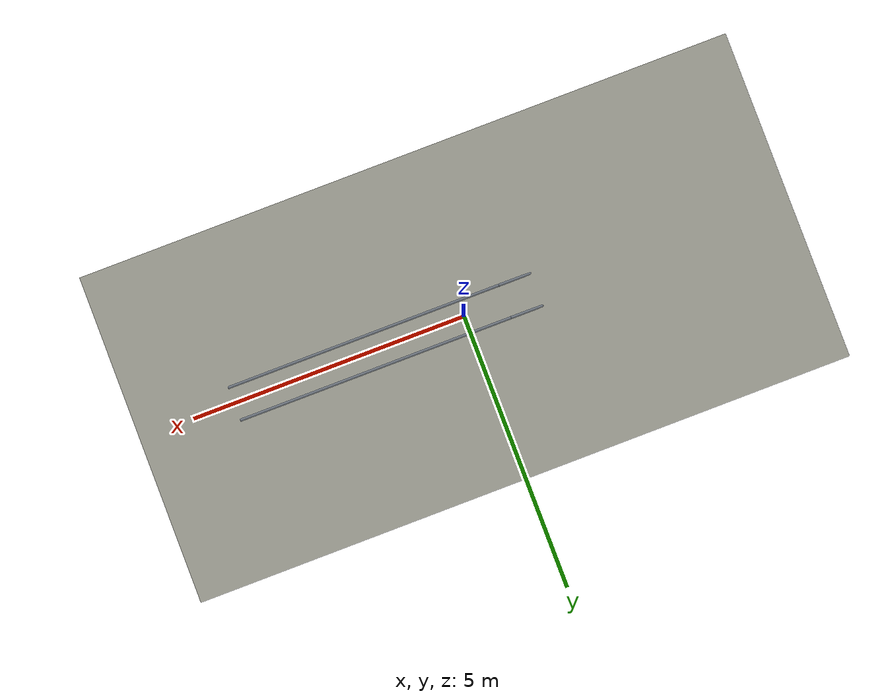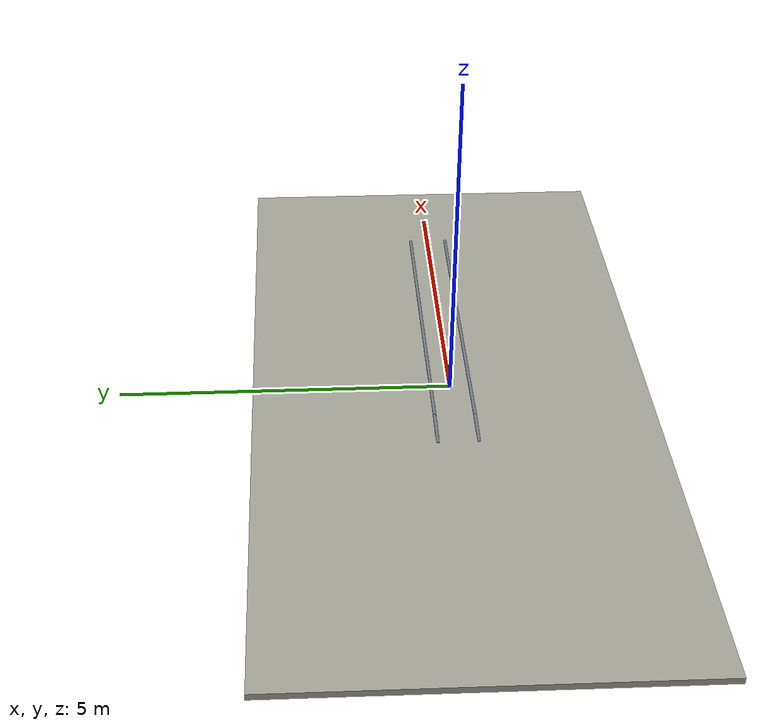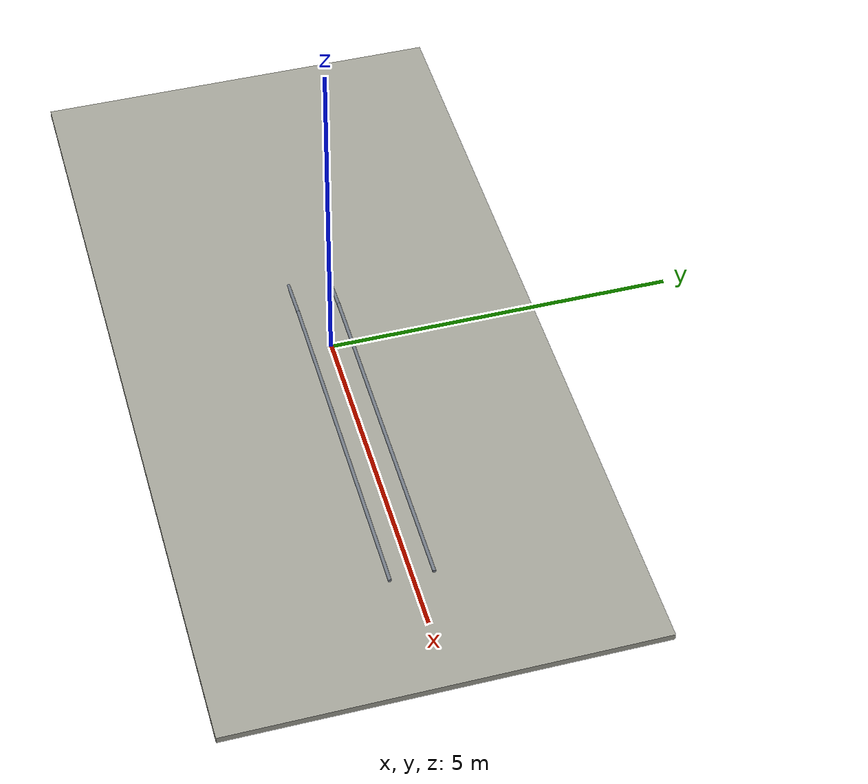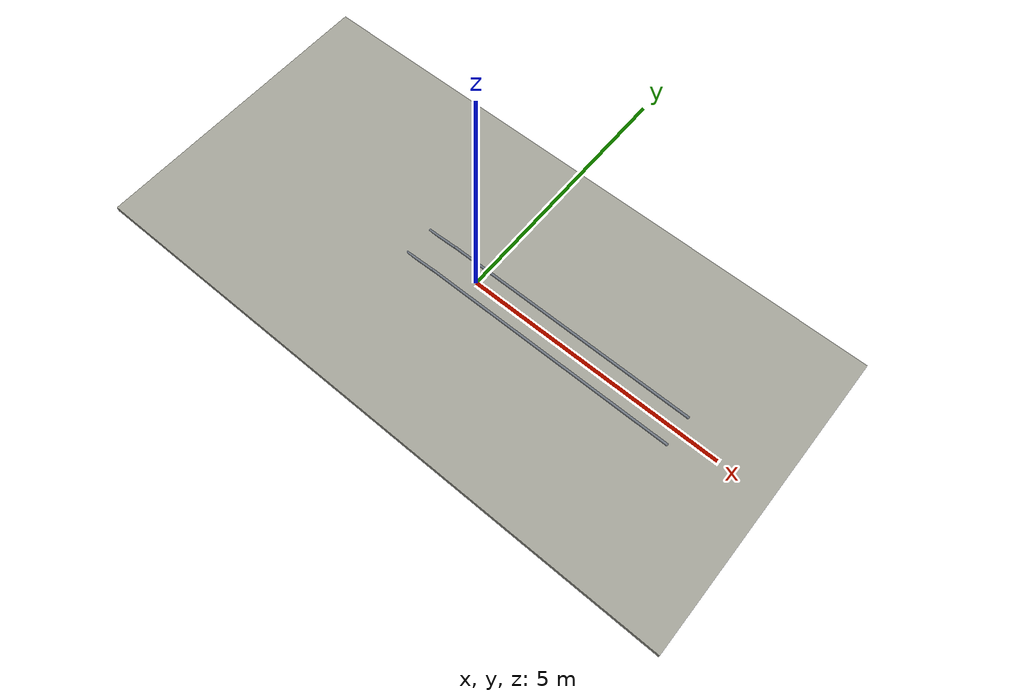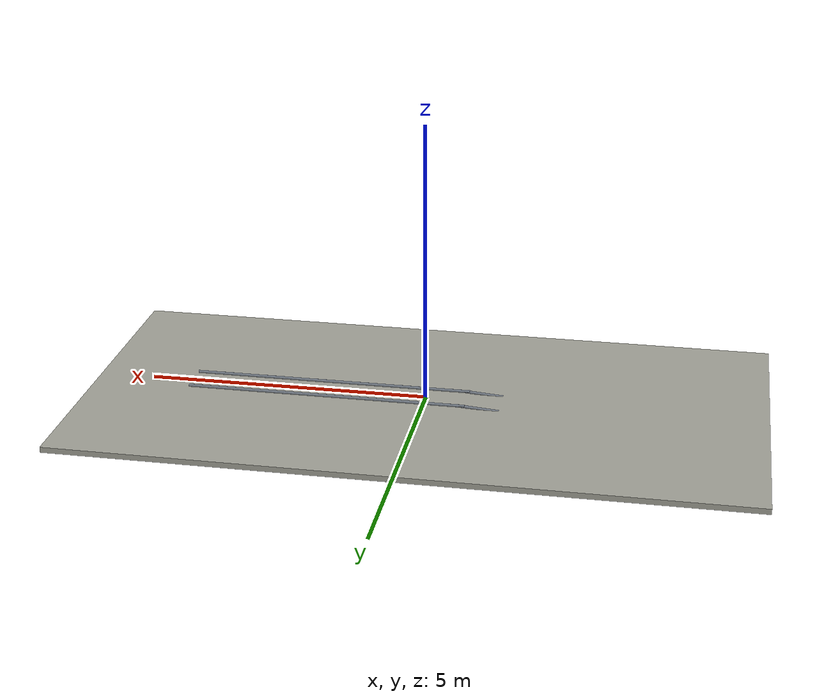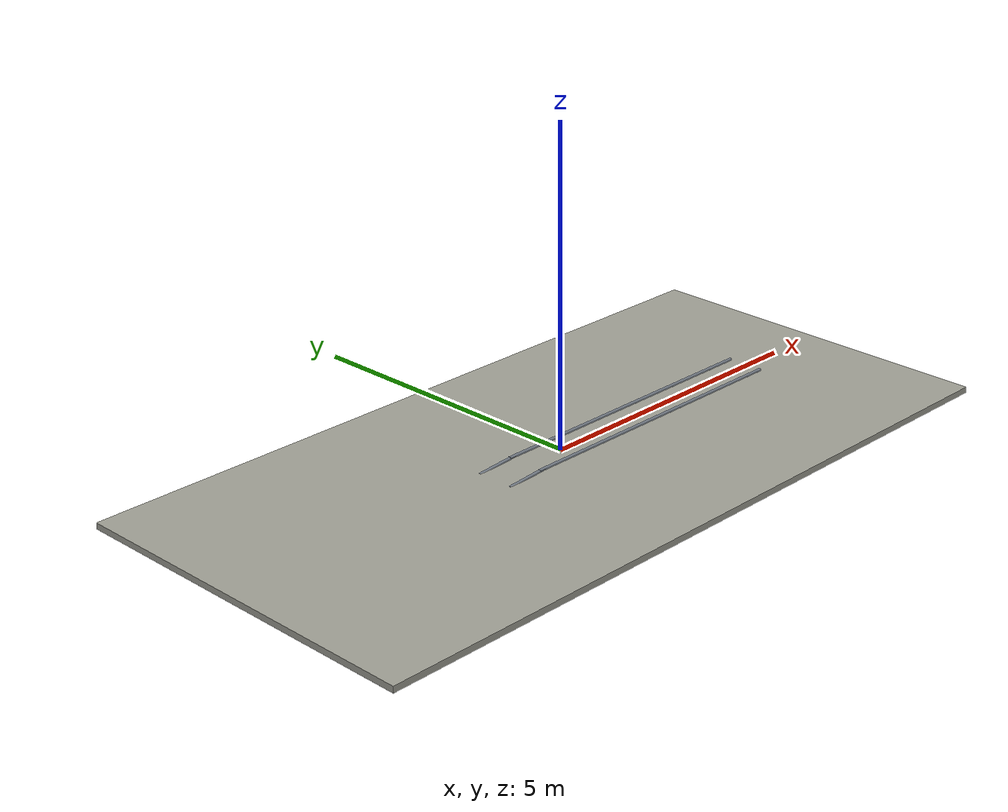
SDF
<?xml version="1.0"?>
<sdf version="1.6">
  <world name="rail_entry">
    <gravity>0 0 -9.80665</gravity>
    <physics name="ode_physics" default="1" type="ode">
      <max_step_size>0.001</max_step_size>
      <real_time_factor>1.0</real_time_factor>
      <real_time_update_rate>1000</real_time_update_rate>
      <ode>
        <solver><type>quick</type><iters>100</iters><sor>1.3</sor></solver>
        <constraints><cfm>0.0</cfm><erp>0.2</erp><contact_max_correcting_vel>0.08</contact_max_correcting_vel><contact_surface_layer>0.0005</contact_surface_layer></constraints>
      </ode>
    </physics>

    <plugin name="gazebo_ros_state" filename="libgazebo_ros_state.so">
      <ros><namespace>/gazebo</namespace></ros>
      <update_rate>50.0</update_rate>
    </plugin>

    <scene>
      <ambient>0.65 0.65 0.65 1</ambient>
      <background>0.82 0.88 0.94 1</background>
      <shadows>true</shadows>
    </scene>

    <model name="concrete_floor">
      <static>true</static>
      <link name="floor_link">
        <collision name="floor_collision">
          <geometry><box><size>12 6 0.10</size></box></geometry>
          <pose>0 0 -0.05 0 0 0</pose>
          <surface><friction><ode><mu>1.2</mu><mu2>1.2</mu2></ode></friction></surface>
        </collision>
        <visual name="floor_visual">
          <geometry><box><size>12 6 0.10</size></box></geometry>
          <pose>0 0 -0.05 0 0 0</pose>
          <material><ambient>0.55 0.55 0.52 1</ambient><diffuse>0.62 0.62 0.58 1</diffuse></material>
        </visual>
      </link>
    </model>

    <model name="left_entry_ramp">
      <static>true</static>
      <pose>-1.0 0.30 0.010 0 1.4994888620 0</pose>
      <link name="rail_link">
        <collision name="rail_collision">
          <geometry><cylinder><radius>0.025</radius><length>0.7017834424</length></cylinder></geometry>
          <surface><friction><ode><mu>0.60</mu><mu2>20.0</mu2><fdir1>0 0 1</fdir1></ode></friction></surface>
        </collision>
        <visual name="rail_visual">
          <geometry><cylinder><radius>0.025</radius><length>0.7017834424</length></cylinder></geometry>
          <material><ambient>0.28 0.30 0.32 1</ambient><diffuse>0.45 0.48 0.52 1</diffuse></material>
        </visual>
      </link>
    </model>

    <model name="right_entry_ramp">
      <static>true</static>
      <pose>-1.0 -0.30 0.010 0 1.4994888620 0</pose>
      <link name="rail_link">
        <collision name="rail_collision">
          <geometry><cylinder><radius>0.025</radius><length>0.7017834424</length></cylinder></geometry>
          <surface><friction><ode><mu>0.60</mu><mu2>20.0</mu2><fdir1>0 0 1</fdir1></ode></friction></surface>
        </collision>
        <visual name="rail_visual">
          <geometry><cylinder><radius>0.025</radius><length>0.7017834424</length></cylinder></geometry>
          <material><ambient>0.28 0.30 0.32 1</ambient><diffuse>0.45 0.48 0.52 1</diffuse></material>
        </visual>
      </link>
    </model>

    <model name="left_rail">
      <static>true</static>
      <pose>1.75 0.30 0.035 0 1.57079632679 0</pose>
      <link name="rail_link">
        <collision name="rail_collision">
          <geometry><cylinder><radius>0.025</radius><length>5.0</length></cylinder></geometry>
          <surface><friction><ode><mu>0.60</mu><mu2>20.0</mu2><fdir1>0 0 1</fdir1></ode></friction></surface>
        </collision>
        <visual name="rail_visual">
          <geometry><cylinder><radius>0.025</radius><length>5.0</length></cylinder></geometry>
          <material><ambient>0.28 0.30 0.32 1</ambient><diffuse>0.45 0.48 0.52 1</diffuse></material>
        </visual>
      </link>
    </model>

    <model name="right_rail">
      <static>true</static>
      <pose>1.75 -0.30 0.035 0 1.57079632679 0</pose>
      <link name="rail_link">
        <collision name="rail_collision">
          <geometry><cylinder><radius>0.025</radius><length>5.0</length></cylinder></geometry>
          <surface><friction><ode><mu>0.60</mu><mu2>20.0</mu2><fdir1>0 0 1</fdir1></ode></friction></surface>
        </collision>
        <visual name="rail_visual">
          <geometry><cylinder><radius>0.025</radius><length>5.0</length></cylinder></geometry>
          <material><ambient>0.28 0.30 0.32 1</ambient><diffuse>0.45 0.48 0.52 1</diffuse></material>
        </visual>
      </link>
    </model>

    <include><uri>model://sun</uri></include>
  </world>
</sdf>
